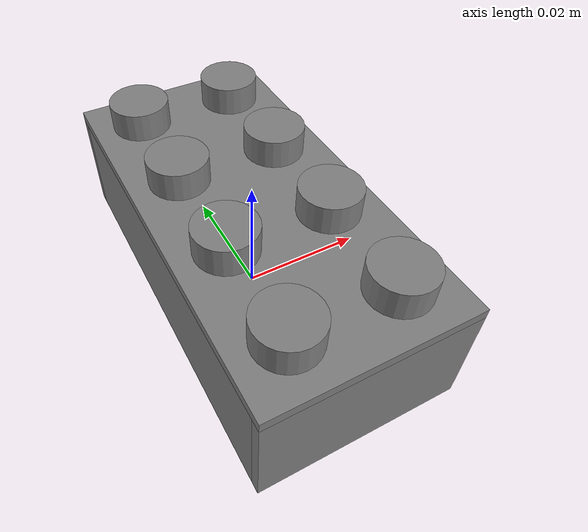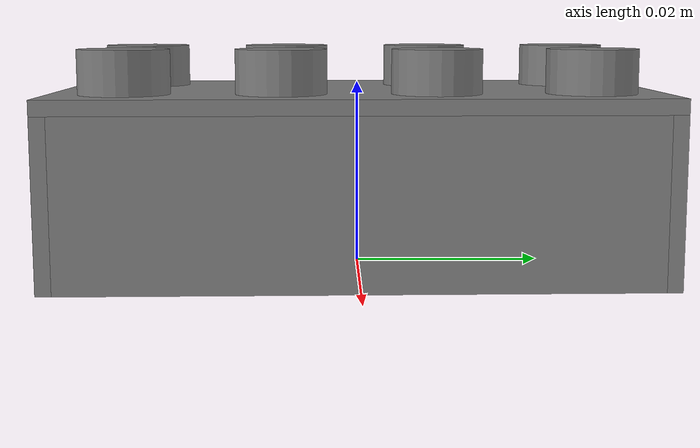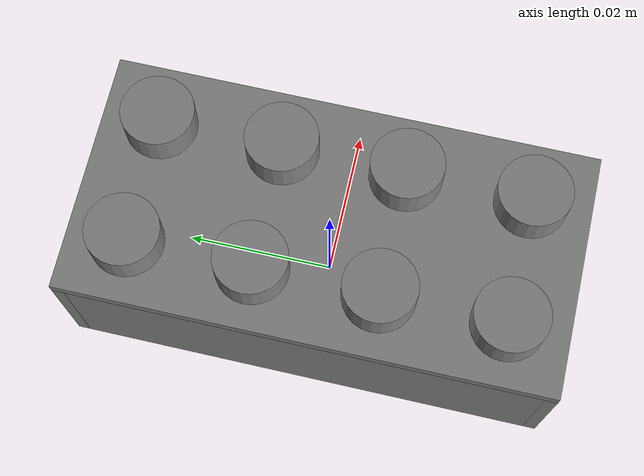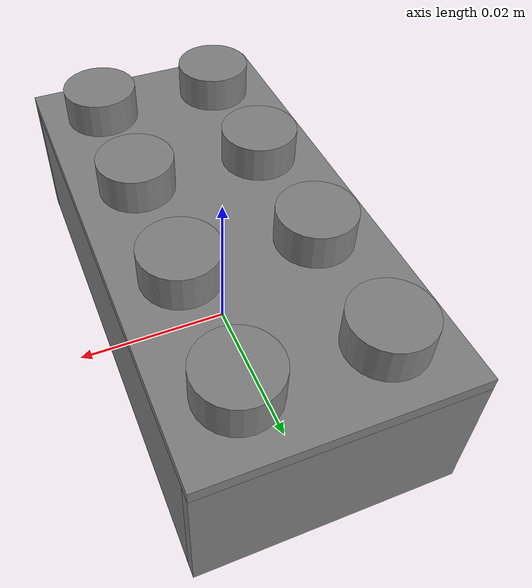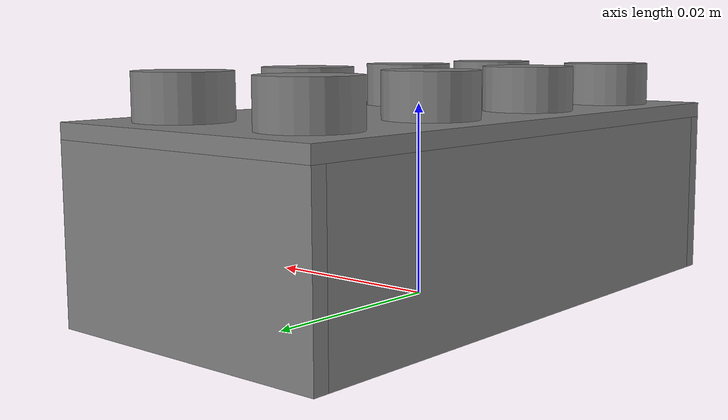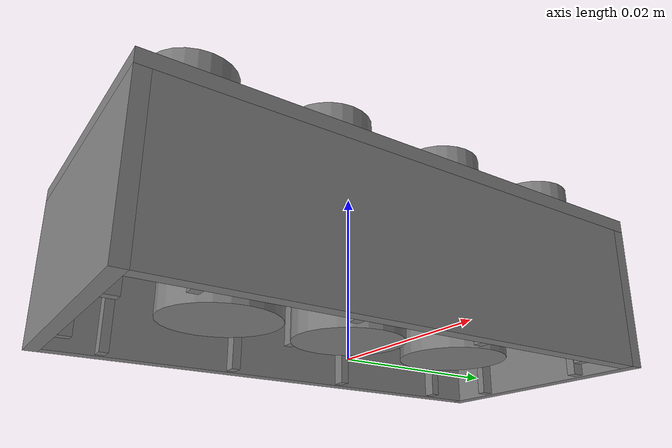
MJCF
<mujoco model='duplo2x4'>
  <option>
    <flag nativeccd="disable" multiccd="disable"/>
  </option>

  <default>
    <site type='sphere' size='0.001' group='5' rgba='1 0 0 0.3'/>
    <geom friction='.35' solimp=".99 .999 .001" solref=".01 1" rgba=".5 .5 .5 1"/>

    <default class='base'>
      <geom type='box' pos='0 0 0.0096' size='0.0159 0.0318 0.0096' contype='3' conaffinity='2' rgba='0 0 1 0.3' group='4' mass='0'/>
    </default>
    <default class='wall'>
      <geom type='box' contype='4' conaffinity='0'/>
    </default>
    <default class='flange'>
      <geom type='box' size='.0008 .00055 .0087' contype='0' conaffinity='0'/>
    </default>
    <default class='stud'>
      <geom type='cylinder' size='.0047 .0023' density='500' margin='.0001' contype='5' conaffinity='4'/>
    </default>
    <default class='stud-capsule'>
      <geom type='capsule' size='.005 .0023' density='500' group='3' mass='0' contype='0' conaffinity='0'/>
    </default>
    <default class='tube'>
      <geom type='cylinder' size='.0066999 .0078' density='300' contype='4' conaffinity='0'/>
    </default>

  </default>

  <worldbody>
    <geom name='base' class='base'/>

    <geom name='wall_x0' class='wall' pos='-.0151 0 .0088' size='.0008 .0302 .0088'/>
    <geom name='wall_x1' class='wall' pos='+.0151 0 .0088' size='.0008 .0302 .0088'/>
    <geom name='wall_y0' class='wall' pos='0  -.031 .0088' size='.0159 .0008 .0088'/>
    <geom name='wall_y1' class='wall' pos='0  +.031 .0088' size='.0159 .0008 .0088'/>
    <geom name='wall_z1' class='wall' pos='0      0 .0184' size='.0159 .0318 .0008'/>

    <!-- Site that fully encloses all of the geoms in the brick. -->
    <site name='bounding_box' type='box' size='0.016 0.0319 0.012' pos='0 0 0.0119' group='3'/>

    <!-- Sites used to determine whether or not two bricks are clicked together. -->
    <site name='stud_00' pos='-.008 -.024 .0238'/>
    <site name='stud_01' pos='-.008 -.008 .0238'/>
    <site name='stud_02' pos='-.008 +.008 .0238'/>
    <site name='stud_03' pos='-.008 +.024 .0238'/>
    <site name='stud_10' pos='+.008 -.024 .0238'/>
    <site name='stud_11' pos='+.008 -.008 .0238'/>
    <site name='stud_12' pos='+.008 +.008 .0238'/>
    <site name='stud_13' pos='+.008 +.024 .0238'/>

    <site name='hole_00' pos='-.008 -.024 .0046'/>
    <site name='hole_01' pos='-.008 -.008 .0046'/>
    <site name='hole_02' pos='-.008 +.008 .0046'/>
    <site name='hole_03' pos='-.008 +.024 .0046'/>
    <site name='hole_10' pos='+.008 -.024 .0046'/>
    <site name='hole_11' pos='+.008 -.008 .0046'/>
    <site name='hole_12' pos='+.008 +.008 .0046'/>
    <site name='hole_13' pos='+.008 +.024 .0046'/>

    <geom name='stud_00' class='stud' pos='-.00805 -.024 .0215'/>
    <geom name='stud_01' class='stud' pos='-.00805 -.008 .0215'/>
    <geom name='stud_02' class='stud' pos='-.00805 +.008 .0215'/>
    <geom name='stud_03' class='stud' pos='-.00805 +.024 .0215'/>
    <geom name='stud_10' class='stud' pos='+.00805 -.024 .0215'/>
    <geom name='stud_11' class='stud' pos='+.00805 -.008 .0215'/>
    <geom name='stud_12' class='stud' pos='+.00805 +.008 .0215'/>
    <geom name='stud_13' class='stud' pos='+.00805 +.024 .0215'/>

    <geom name='studcap_00' class='stud-capsule' pos='-.008 -.024 .0215'/>
    <geom name='studcap_01' class='stud-capsule' pos='-.008 -.008 .0215'/>
    <geom name='studcap_02' class='stud-capsule' pos='-.008 +.008 .0215'/>
    <geom name='studcap_03' class='stud-capsule' pos='-.008 +.024 .0215'/>
    <geom name='studcap_10' class='stud-capsule' pos='+.008 -.024 .0215'/>
    <geom name='studcap_11' class='stud-capsule' pos='+.008 -.008 .0215'/>
    <geom name='studcap_12' class='stud-capsule' pos='+.008 +.008 .0215'/>
    <geom name='studcap_13' class='stud-capsule' pos='+.008 +.024 .0215'/>

    <geom name='flange_00' class='flange' pos='-.0135 -.024 .00885'/>
    <geom name='flange_01' class='flange' pos='-.0135 -.008 .00885'/>
    <geom name='flange_02' class='flange' pos='-.0135 +.008 .00885'/>
    <geom name='flange_03' class='flange' pos='-.0135 +.024 .00885'/>
    <geom name='flange_10' class='flange' pos='+.0135 -.024 .00885'/>
    <geom name='flange_11' class='flange' pos='+.0135 -.008 .00885'/>
    <geom name='flange_12' class='flange' pos='+.0135 +.008 .00885'/>
    <geom name='flange_13' class='flange' pos='+.0135 +.024 .00885'/>

    <geom name='flange_00y' class='flange' pos='-.00805 -.02945 .00885' quat='1 0 0 1'/>
    <geom name='flange_01y' class='flange' pos='-.00805 +.02945 .00885' quat='1 0 0 1'/>
    <geom name='flange_10y' class='flange' pos='+.00805 -.02945 .00885' quat='1 0 0 1'/>
    <geom name='flange_11y' class='flange' pos='+.00805 +.02945 .00885' quat='1 0 0 1'/>

    <geom name='tube_0' class='tube' pos='0 -.016 .0098'/>
    <geom name='tube_1' class='tube' pos='0 0     .0098'/>
    <geom name='tube_2' class='tube' pos='0 +.016 .0098'/>

    <geom name='inner_x0' class='wall' pos='-.01045  0 .011' size='.00385 .00055 .0066'/>
    <geom name='inner_x1' class='wall' pos='+.01045  0 .011' size='.00385 .00055 .0066'/>
    <geom name='inner_y0' class='wall' pos='0    -.008 .0132' size='.0004 .0014 .0044'/>
    <geom name='inner_y1' class='wall' pos='0     .008 .0132' size='.0004 .0014 .0044'/>
  </worldbody>

  <sensor>
    <framepos name='position' objtype='site' objname='bounding_box'/>
    <framequat name='orientation' objtype='site' objname='bounding_box'/>
    <framelinvel name='linear_velocity' objtype='site' objname='bounding_box'/>
    <frameangvel name='angular_velocity' objtype='site' objname='bounding_box'/>
    <force name='force' site='bounding_box'/>
  </sensor>

</mujoco>
